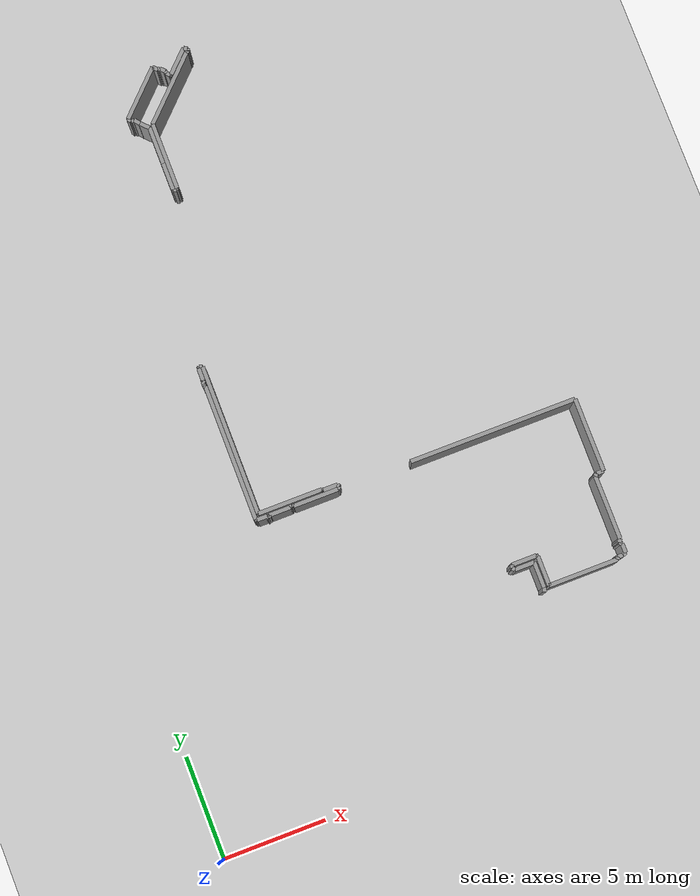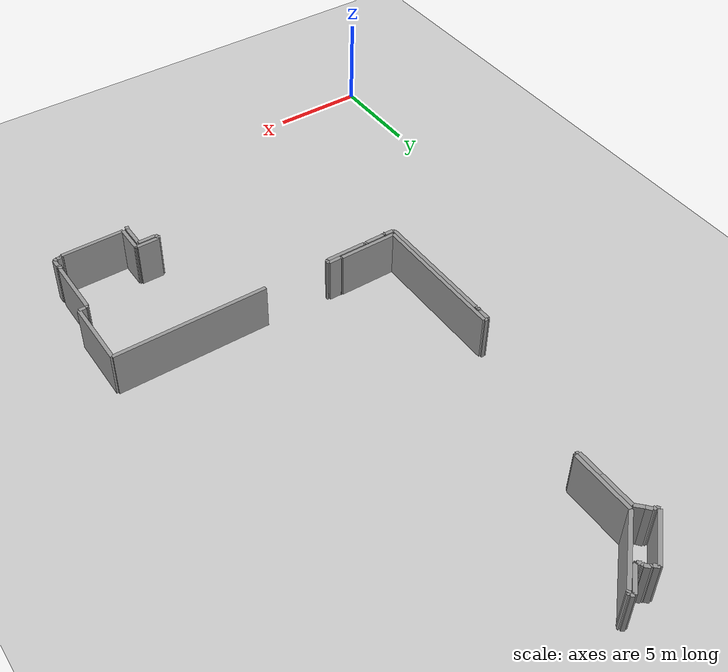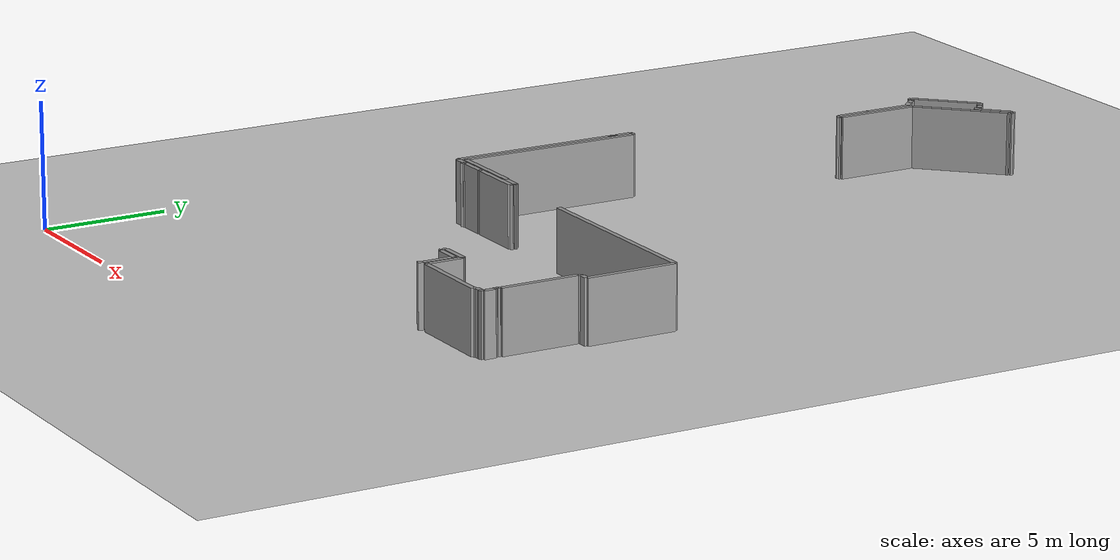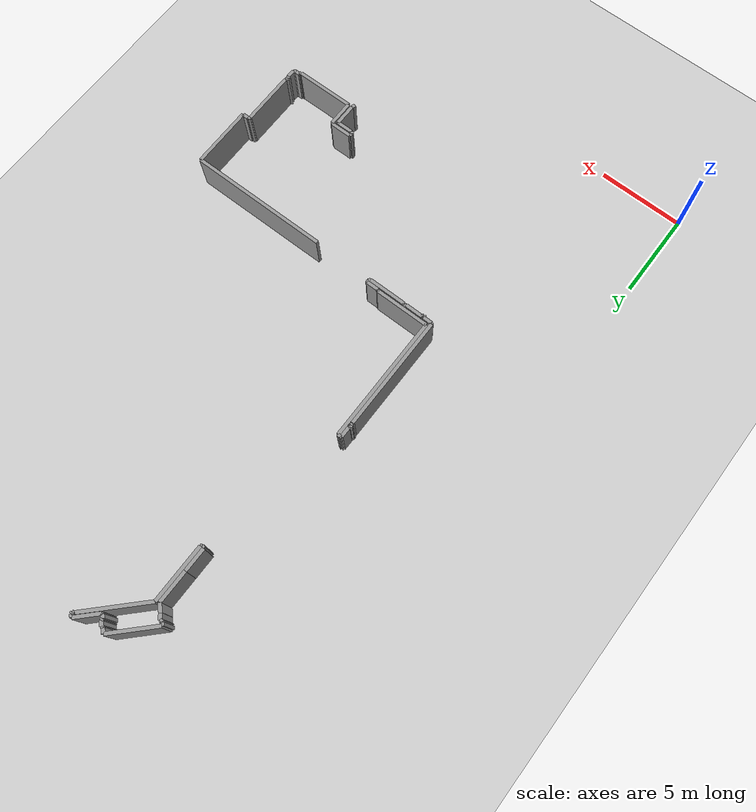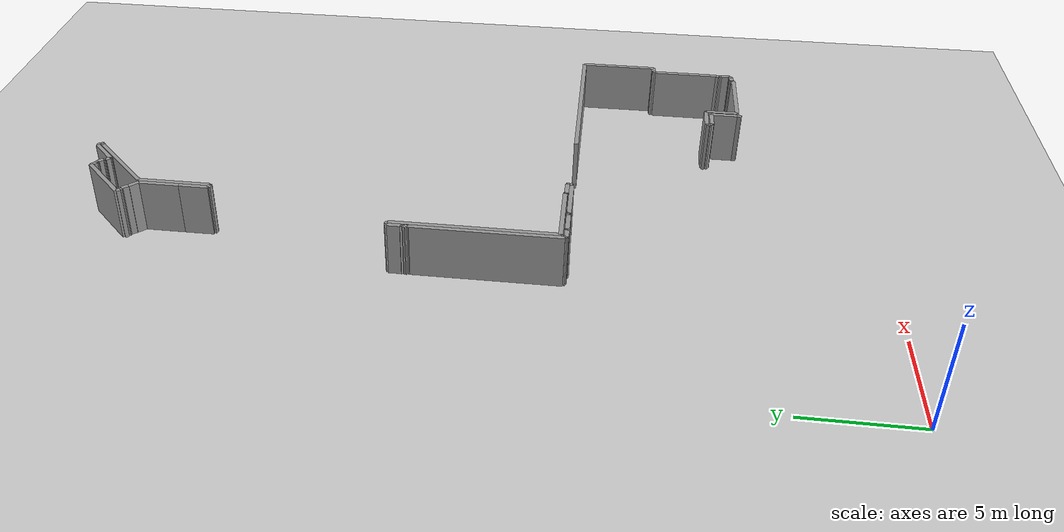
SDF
<sdf version="1.4">
 <world name="1_wall">
  <model name="ground_plane">
   <static>1</static>
   <link name="link">
    <collision name="collision">
     <geometry><plane><normal>0 0 1</normal><size>1000 1000</size></plane></geometry>
     <surface><friction><ode><mu>100</mu><mu2>50</mu2></ode></friction></surface>
    </collision>
    <visual name="visual">
     <cast_shadows>0</cast_shadows>
     <geometry><plane><normal>0 0 1</normal><size>10000 10000</size></plane></geometry>
     <material>
      <script><uri>file://media/materials/scripts/gazebo.material</uri><name>Gazebo/Grey</name></script>
     </material>
    </visual>
    <velocity_decay><linear>0</linear><angular>0</angular></velocity_decay>
   </link>
  </model>
  <model name="Wall_450">
   <static>1</static>
   <link name="Wall_450">
    <collision name="Wall_Collision_450">
     <geometry><box><size>8.2 0.2 2.5</size></box></geometry>
     <pose>0 0 1.25 0 -0 0</pose>
    </collision>
    <visual name="Wall_Visual_450">
     <pose>0 0 1.25 0 -0 0</pose>
     <geometry><box><size>8.2 0.2 2.5</size></box></geometry>
     <material>
      <script><uri>file://media/materials/scripts/gazebo.material</uri><name>Gazebo/Grey</name></script>
     </material>
    </visual>
    <velocity_decay><linear>0</linear><angular>0</angular></velocity_decay>
    <pose>18.7 14.0 0 0 0 0.0</pose>
   </link>
  </model>
  <model name="Wall_451">
   <static>1</static>
   <link name="Wall_451">
    <collision name="Wall_Collision_451">
     <geometry><box><size>3.6 0.2 2.5</size></box></geometry>
     <pose>0 0 1.25 0 -0 0</pose>
    </collision>
    <visual name="Wall_Visual_451">
     <pose>0 0 1.25 0 -0 0</pose>
     <geometry><box><size>3.6 0.2 2.5</size></box></geometry>
     <material>
      <script><uri>file://media/materials/scripts/gazebo.material</uri><name>Gazebo/Grey</name></script>
     </material>
    </visual>
    <velocity_decay><linear>0</linear><angular>0</angular></velocity_decay>
    <pose>22.8 12.2 0 0 0 -1.57079632679</pose>
   </link>
  </model>
  <model name="Wall_452">
   <static>1</static>
   <link name="Wall_452">
    <collision name="Wall_Collision_452">
     <geometry><box><size>0.35 0.2 2.5</size></box></geometry>
     <pose>0 0 1.25 0 -0 0</pose>
    </collision>
    <visual name="Wall_Visual_452">
     <pose>0 0 1.25 0 -0 0</pose>
     <geometry><box><size>0.35 0.2 2.5</size></box></geometry>
     <material>
      <script><uri>file://media/materials/scripts/gazebo.material</uri><name>Gazebo/Grey</name></script>
     </material>
    </visual>
    <velocity_decay><linear>0</linear><angular>0</angular></velocity_decay>
    <pose>22.625 10.4 0 0 0 3.14159265359</pose>
   </link>
  </model>
  <model name="Wall_453">
   <static>1</static>
   <link name="Wall_453">
    <collision name="Wall_Collision_453">
     <geometry><box><size>0.141421356237 0.2 2.5</size></box></geometry>
     <pose>0 0 1.25 0 -0 0</pose>
    </collision>
    <visual name="Wall_Visual_453">
     <pose>0 0 1.25 0 -0 0</pose>
     <geometry><box><size>0.141421356237 0.2 2.5</size></box></geometry>
     <material>
      <script><uri>file://media/materials/scripts/gazebo.material</uri><name>Gazebo/Grey</name></script>
     </material>
    </visual>
    <velocity_decay><linear>0</linear><angular>0</angular></velocity_decay>
    <pose>22.4 10.35 0 0 0 -2.35619449019</pose>
   </link>
  </model>
  <model name="Wall_454">
   <static>1</static>
   <link name="Wall_454">
    <collision name="Wall_Collision_454">
     <geometry><box><size>3.1 0.2 2.5</size></box></geometry>
     <pose>0 0 1.25 0 -0 0</pose>
    </collision>
    <visual name="Wall_Visual_454">
     <pose>0 0 1.25 0 -0 0</pose>
     <geometry><box><size>3.1 0.2 2.5</size></box></geometry>
     <material>
      <script><uri>file://media/materials/scripts/gazebo.material</uri><name>Gazebo/Grey</name></script>
     </material>
    </visual>
    <velocity_decay><linear>0</linear><angular>0</angular></velocity_decay>
    <pose>22.35 8.75 0 0 0 -1.57079632679</pose>
   </link>
  </model>
  <model name="Wall_455">
   <static>1</static>
   <link name="Wall_455">
    <collision name="Wall_Collision_455">
     <geometry><box><size>0.180277563773 0.2 2.5</size></box></geometry>
     <pose>0 0 1.25 0 -0 0</pose>
    </collision>
    <visual name="Wall_Visual_455">
     <pose>0 0 1.25 0 -0 0</pose>
     <geometry><box><size>0.180277563773 0.2 2.5</size></box></geometry>
     <material>
      <script><uri>file://media/materials/scripts/gazebo.material</uri><name>Gazebo/Grey</name></script>
     </material>
    </visual>
    <velocity_decay><linear>0</linear><angular>0</angular></velocity_decay>
    <pose>22.3 7.125 0 0 0 -2.15879893034</pose>
   </link>
  </model>
  <model name="Wall_456">
   <static>1</static>
   <link name="Wall_456">
    <collision name="Wall_Collision_456">
     <geometry><box><size>0.141421356237 0.2 2.5</size></box></geometry>
     <pose>0 0 1.25 0 -0 0</pose>
    </collision>
    <visual name="Wall_Visual_456">
     <pose>0 0 1.25 0 -0 0</pose>
     <geometry><box><size>0.141421356237 0.2 2.5</size></box></geometry>
     <material>
      <script><uri>file://media/materials/scripts/gazebo.material</uri><name>Gazebo/Grey</name></script>
     </material>
    </visual>
    <velocity_decay><linear>0</linear><angular>0</angular></velocity_decay>
    <pose>22.3 7.0 0 0 0 -0.785398163397</pose>
   </link>
  </model>
  <model name="Wall_457">
   <static>1</static>
   <link name="Wall_457">
    <collision name="Wall_Collision_457">
     <geometry><box><size>0.45 0.2 2.5</size></box></geometry>
     <pose>0 0 1.25 0 -0 0</pose>
    </collision>
    <visual name="Wall_Visual_457">
     <pose>0 0 1.25 0 -0 0</pose>
     <geometry><box><size>0.45 0.2 2.5</size></box></geometry>
     <material>
      <script><uri>file://media/materials/scripts/gazebo.material</uri><name>Gazebo/Grey</name></script>
     </material>
    </visual>
    <velocity_decay><linear>0</linear><angular>0</angular></velocity_decay>
    <pose>22.35 6.725 0 0 0 -1.57079632679</pose>
   </link>
  </model>
  <model name="Wall_458">
   <static>1</static>
   <link name="Wall_458">
    <collision name="Wall_Collision_458">
     <geometry><box><size>0.158113883008 0.2 2.5</size></box></geometry>
     <pose>0 0 1.25 0 -0 0</pose>
    </collision>
    <visual name="Wall_Visual_458">
     <pose>0 0 1.25 0 -0 0</pose>
     <geometry><box><size>0.158113883008 0.2 2.5</size></box></geometry>
     <material>
      <script><uri>file://media/materials/scripts/gazebo.material</uri><name>Gazebo/Grey</name></script>
     </material>
    </visual>
    <velocity_decay><linear>0</linear><angular>0</angular></velocity_decay>
    <pose>22.275 6.475 0 0 0 -2.81984209919</pose>
   </link>
  </model>
  <model name="Wall_459">
   <static>1</static>
   <link name="Wall_459">
    <collision name="Wall_Collision_459">
     <geometry><box><size>0.25 0.2 2.5</size></box></geometry>
     <pose>0 0 1.25 0 -0 0</pose>
    </collision>
    <visual name="Wall_Visual_459">
     <pose>0 0 1.25 0 -0 0</pose>
     <geometry><box><size>0.25 0.2 2.5</size></box></geometry>
     <material>
      <script><uri>file://media/materials/scripts/gazebo.material</uri><name>Gazebo/Grey</name></script>
     </material>
    </visual>
    <velocity_decay><linear>0</linear><angular>0</angular></velocity_decay>
    <pose>22.075 6.45 0 0 0 3.14159265359</pose>
   </link>
  </model>
  <model name="Wall_460">
   <static>1</static>
   <link name="Wall_460">
    <collision name="Wall_Collision_460">
     <geometry><box><size>0.111803398875 0.2 2.5</size></box></geometry>
     <pose>0 0 1.25 0 -0 0</pose>
    </collision>
    <visual name="Wall_Visual_460">
     <pose>0 0 1.25 0 -0 0</pose>
     <geometry><box><size>0.111803398875 0.2 2.5</size></box></geometry>
     <material>
      <script><uri>file://media/materials/scripts/gazebo.material</uri><name>Gazebo/Grey</name></script>
     </material>
    </visual>
    <velocity_decay><linear>0</linear><angular>0</angular></velocity_decay>
    <pose>21.925 6.4 0 0 0 -2.0344439358</pose>
   </link>
  </model>
  <model name="Wall_461">
   <static>1</static>
   <link name="Wall_461">
    <collision name="Wall_Collision_461">
     <geometry><box><size>3.4 0.2 2.5</size></box></geometry>
     <pose>0 0 1.25 0 -0 0</pose>
    </collision>
    <visual name="Wall_Visual_461">
     <pose>0 0 1.25 0 -0 0</pose>
     <geometry><box><size>3.4 0.2 2.5</size></box></geometry>
     <material>
      <script><uri>file://media/materials/scripts/gazebo.material</uri><name>Gazebo/Grey</name></script>
     </material>
    </visual>
    <velocity_decay><linear>0</linear><angular>0</angular></velocity_decay>
    <pose>20.2 6.35 0 0 0 3.14159265359</pose>
   </link>
  </model>
  <model name="Wall_462">
   <static>1</static>
   <link name="Wall_462">
    <collision name="Wall_Collision_462">
     <geometry><box><size>1.45 0.2 2.5</size></box></geometry>
     <pose>0 0 1.25 0 -0 0</pose>
    </collision>
    <visual name="Wall_Visual_462">
     <pose>0 0 1.25 0 -0 0</pose>
     <geometry><box><size>1.45 0.2 2.5</size></box></geometry>
     <material>
      <script><uri>file://media/materials/scripts/gazebo.material</uri><name>Gazebo/Grey</name></script>
     </material>
    </visual>
    <velocity_decay><linear>0</linear><angular>0</angular></velocity_decay>
    <pose>18.5 7.075 0 0 0 1.57079632679</pose>
   </link>
  </model>
  <model name="Wall_463">
   <static>1</static>
   <link name="Wall_463">
    <collision name="Wall_Collision_463">
     <geometry><box><size>0.0707106781187 0.2 2.5</size></box></geometry>
     <pose>0 0 1.25 0 -0 0</pose>
    </collision>
    <visual name="Wall_Visual_463">
     <pose>0 0 1.25 0 -0 0</pose>
     <geometry><box><size>0.0707106781187 0.2 2.5</size></box></geometry>
     <material>
      <script><uri>file://media/materials/scripts/gazebo.material</uri><name>Gazebo/Grey</name></script>
     </material>
    </visual>
    <velocity_decay><linear>0</linear><angular>0</angular></velocity_decay>
    <pose>18.475 7.825 0 0 0 2.35619449019</pose>
   </link>
  </model>
  <model name="Wall_464">
   <static>1</static>
   <link name="Wall_464">
    <collision name="Wall_Collision_464">
     <geometry><box><size>1.2 0.2 2.5</size></box></geometry>
     <pose>0 0 1.25 0 -0 0</pose>
    </collision>
    <visual name="Wall_Visual_464">
     <pose>0 0 1.25 0 -0 0</pose>
     <geometry><box><size>1.2 0.2 2.5</size></box></geometry>
     <material>
      <script><uri>file://media/materials/scripts/gazebo.material</uri><name>Gazebo/Grey</name></script>
     </material>
    </visual>
    <velocity_decay><linear>0</linear><angular>0</angular></velocity_decay>
    <pose>17.85 7.85 0 0 0 3.14159265359</pose>
   </link>
  </model>
  <model name="Wall_465">
   <static>1</static>
   <link name="Wall_465">
    <collision name="Wall_Collision_465">
     <geometry><box><size>0.158113883008 0.2 2.5</size></box></geometry>
     <pose>0 0 1.25 0 -0 0</pose>
    </collision>
    <visual name="Wall_Visual_465">
     <pose>0 0 1.25 0 -0 0</pose>
     <geometry><box><size>0.158113883008 0.2 2.5</size></box></geometry>
     <material>
      <script><uri>file://media/materials/scripts/gazebo.material</uri><name>Gazebo/Grey</name></script>
     </material>
    </visual>
    <velocity_decay><linear>0</linear><angular>0</angular></velocity_decay>
    <pose>17.225 7.775 0 0 0 -1.89254688119</pose>
   </link>
  </model>
  <model name="Wall_466">
   <static>1</static>
   <link name="Wall_466">
    <collision name="Wall_Collision_466">
     <geometry><box><size>0.141421356237 0.2 2.5</size></box></geometry>
     <pose>0 0 1.25 0 -0 0</pose>
    </collision>
    <visual name="Wall_Visual_466">
     <pose>0 0 1.25 0 -0 0</pose>
     <geometry><box><size>0.141421356237 0.2 2.5</size></box></geometry>
     <material>
      <script><uri>file://media/materials/scripts/gazebo.material</uri><name>Gazebo/Grey</name></script>
     </material>
    </visual>
    <velocity_decay><linear>0</linear><angular>0</angular></velocity_decay>
    <pose>17.25 7.65 0 0 0 -0.785398163397</pose>
   </link>
  </model>
  <model name="Wall_467">
   <static>1</static>
   <link name="Wall_467">
    <collision name="Wall_Collision_467">
     <geometry><box><size>0.95 0.2 2.5</size></box></geometry>
     <pose>0 0 1.25 0 -0 0</pose>
    </collision>
    <visual name="Wall_Visual_467">
     <pose>0 0 1.25 0 -0 0</pose>
     <geometry><box><size>0.95 0.2 2.5</size></box></geometry>
     <material>
      <script><uri>file://media/materials/scripts/gazebo.material</uri><name>Gazebo/Grey</name></script>
     </material>
    </visual>
    <velocity_decay><linear>0</linear><angular>0</angular></velocity_decay>
    <pose>17.775 7.6 0 0 0 0.0</pose>
   </link>
  </model>
  <model name="Wall_468">
   <static>1</static>
   <link name="Wall_468">
    <collision name="Wall_Collision_468">
     <geometry><box><size>1.25 0.2 2.5</size></box></geometry>
     <pose>0 0 1.25 0 -0 0</pose>
    </collision>
    <visual name="Wall_Visual_468">
     <pose>0 0 1.25 0 -0 0</pose>
     <geometry><box><size>1.25 0.2 2.5</size></box></geometry>
     <material>
      <script><uri>file://media/materials/scripts/gazebo.material</uri><name>Gazebo/Grey</name></script>
     </material>
    </visual>
    <velocity_decay><linear>0</linear><angular>0</angular></velocity_decay>
    <pose>18.25 6.975 0 0 0 -1.57079632679</pose>
   </link>
  </model>
  <model name="Wall_469">
   <static>1</static>
   <link name="Wall_469">
    <collision name="Wall_Collision_469">
     <geometry><box><size>0.206155281281 0.2 2.5</size></box></geometry>
     <pose>0 0 1.25 0 -0 0</pose>
    </collision>
    <visual name="Wall_Visual_469">
     <pose>0 0 1.25 0 -0 0</pose>
     <geometry><box><size>0.206155281281 0.2 2.5</size></box></geometry>
     <material>
      <script><uri>file://media/materials/scripts/gazebo.material</uri><name>Gazebo/Grey</name></script>
     </material>
    </visual>
    <velocity_decay><linear>0</linear><angular>0</angular></velocity_decay>
    <pose>18.225 6.25 0 0 0 -1.81577498992</pose>
   </link>
  </model>
  <model name="Wall_470">
   <static>1</static>
   <link name="Wall_470">
    <collision name="Wall_Collision_470">
     <geometry><box><size>1.35 0.2 2.5</size></box></geometry>
     <pose>0 0 1.25 0 -0 0</pose>
    </collision>
    <visual name="Wall_Visual_470">
     <pose>0 0 1.25 0 -0 0</pose>
     <geometry><box><size>1.35 0.2 2.5</size></box></geometry>
     <material>
      <script><uri>file://media/materials/scripts/gazebo.material</uri><name>Gazebo/Grey</name></script>
     </material>
    </visual>
    <velocity_decay><linear>0</linear><angular>0</angular></velocity_decay>
    <pose>8.8 30.675 0 0 0 -1.57079632679</pose>
   </link>
  </model>
  <model name="Wall_471">
   <static>1</static>
   <link name="Wall_471">
    <collision name="Wall_Collision_471">
     <geometry><box><size>0.158113883008 0.2 2.5</size></box></geometry>
     <pose>0 0 1.25 0 -0 0</pose>
    </collision>
    <visual name="Wall_Visual_471">
     <pose>0 0 1.25 0 -0 0</pose>
     <geometry><box><size>0.158113883008 0.2 2.5</size></box></geometry>
     <material>
      <script><uri>file://media/materials/scripts/gazebo.material</uri><name>Gazebo/Grey</name></script>
     </material>
    </visual>
    <velocity_decay><linear>0</linear><angular>0</angular></velocity_decay>
    <pose>8.875 29.975 0 0 0 -0.321750554397</pose>
   </link>
  </model>
  <model name="Wall_472">
   <static>1</static>
   <link name="Wall_472">
    <collision name="Wall_Collision_472">
     <geometry><box><size>0.0707106781187 0.2 2.5</size></box></geometry>
     <pose>0 0 1.25 0 -0 0</pose>
    </collision>
    <visual name="Wall_Visual_472">
     <pose>0 0 1.25 0 -0 0</pose>
     <geometry><box><size>0.0707106781187 0.2 2.5</size></box></geometry>
     <material>
      <script><uri>file://media/materials/scripts/gazebo.material</uri><name>Gazebo/Grey</name></script>
     </material>
    </visual>
    <velocity_decay><linear>0</linear><angular>0</angular></velocity_decay>
    <pose>8.975 29.975 0 0 0 0.785398163397</pose>
   </link>
  </model>
  <model name="Wall_473">
   <static>1</static>
   <link name="Wall_473">
    <collision name="Wall_Collision_473">
     <geometry><box><size>3.3 0.2 2.5</size></box></geometry>
     <pose>0 0 1.25 0 -0 0</pose>
    </collision>
    <visual name="Wall_Visual_473">
     <pose>0 0 1.25 0 -0 0</pose>
     <geometry><box><size>3.3 0.2 2.5</size></box></geometry>
     <material>
      <script><uri>file://media/materials/scripts/gazebo.material</uri><name>Gazebo/Grey</name></script>
     </material>
    </visual>
    <velocity_decay><linear>0</linear><angular>0</angular></velocity_decay>
    <pose>9.0 31.65 0 0 0 1.57079632679</pose>
   </link>
  </model>
  <model name="Wall_474">
   <static>1</static>
   <link name="Wall_474">
    <collision name="Wall_Collision_474">
     <geometry><box><size>3.81837661841 0.2 2.5</size></box></geometry>
     <pose>0 0 1.25 0 -0 0</pose>
    </collision>
    <visual name="Wall_Visual_474">
     <pose>0 0 1.25 0 -0 0</pose>
     <geometry><box><size>3.81837661841 0.2 2.5</size></box></geometry>
     <material>
      <script><uri>file://media/materials/scripts/gazebo.material</uri><name>Gazebo/Grey</name></script>
     </material>
    </visual>
    <velocity_decay><linear>0</linear><angular>0</angular></velocity_decay>
    <pose>10.35 34.65 0 0 0 0.785398163397</pose>
   </link>
  </model>
  <model name="Wall_475">
   <static>1</static>
   <link name="Wall_475">
    <collision name="Wall_Collision_475">
     <geometry><box><size>0.111803398875 0.2 2.5</size></box></geometry>
     <pose>0 0 1.25 0 -0 0</pose>
    </collision>
    <visual name="Wall_Visual_475">
     <pose>0 0 1.25 0 -0 0</pose>
     <geometry><box><size>0.111803398875 0.2 2.5</size></box></geometry>
     <material>
      <script><uri>file://media/materials/scripts/gazebo.material</uri><name>Gazebo/Grey</name></script>
     </material>
    </visual>
    <velocity_decay><linear>0</linear><angular>0</angular></velocity_decay>
    <pose>11.75 36.025 0 0 0 0.463647609001</pose>
   </link>
  </model>
  <model name="Wall_476">
   <static>1</static>
   <link name="Wall_476">
    <collision name="Wall_Collision_476">
     <geometry><box><size>0.1 0.2 2.5</size></box></geometry>
     <pose>0 0 1.25 0 -0 0</pose>
    </collision>
    <visual name="Wall_Visual_476">
     <pose>0 0 1.25 0 -0 0</pose>
     <geometry><box><size>0.1 0.2 2.5</size></box></geometry>
     <material>
      <script><uri>file://media/materials/scripts/gazebo.material</uri><name>Gazebo/Grey</name></script>
     </material>
    </visual>
    <velocity_decay><linear>0</linear><angular>0</angular></velocity_decay>
    <pose>11.8 36.1 0 0 0 1.57079632679</pose>
   </link>
  </model>
  <model name="Wall_477">
   <static>1</static>
   <link name="Wall_477">
    <collision name="Wall_Collision_477">
     <geometry><box><size>0.180277563773 0.2 2.5</size></box></geometry>
     <pose>0 0 1.25 0 -0 0</pose>
    </collision>
    <visual name="Wall_Visual_477">
     <pose>0 0 1.25 0 -0 0</pose>
     <geometry><box><size>0.180277563773 0.2 2.5</size></box></geometry>
     <material>
      <script><uri>file://media/materials/scripts/gazebo.material</uri><name>Gazebo/Grey</name></script>
     </material>
    </visual>
    <velocity_decay><linear>0</linear><angular>0</angular></velocity_decay>
    <pose>11.725 36.2 0 0 0 2.55359005004</pose>
   </link>
  </model>
  <model name="Wall_478">
   <static>1</static>
   <link name="Wall_478">
    <collision name="Wall_Collision_478">
     <geometry><box><size>1.41421356237 0.2 2.5</size></box></geometry>
     <pose>0 0 1.25 0 -0 0</pose>
    </collision>
    <visual name="Wall_Visual_478">
     <pose>0 0 1.25 0 -0 0</pose>
     <geometry><box><size>1.41421356237 0.2 2.5</size></box></geometry>
     <material>
      <script><uri>file://media/materials/scripts/gazebo.material</uri><name>Gazebo/Grey</name></script>
     </material>
    </visual>
    <velocity_decay><linear>0</linear><angular>0</angular></velocity_decay>
    <pose>11.15 35.75 0 0 0 -2.35619449019</pose>
   </link>
  </model>
  <model name="Wall_479">
   <static>1</static>
   <link name="Wall_479">
    <collision name="Wall_Collision_479">
     <geometry><box><size>0.05 0.2 2.5</size></box></geometry>
     <pose>0 0 1.25 0 -0 0</pose>
    </collision>
    <visual name="Wall_Visual_479">
     <pose>0 0 1.25 0 -0 0</pose>
     <geometry><box><size>0.05 0.2 2.5</size></box></geometry>
     <material>
      <script><uri>file://media/materials/scripts/gazebo.material</uri><name>Gazebo/Grey</name></script>
     </material>
    </visual>
    <velocity_decay><linear>0</linear><angular>0</angular></velocity_decay>
    <pose>10.625 35.25 0 0 0 3.14159265359</pose>
   </link>
  </model>
  <model name="Wall_480">
   <static>1</static>
   <link name="Wall_480">
    <collision name="Wall_Collision_480">
     <geometry><box><size>0.212132034356 0.2 2.5</size></box></geometry>
     <pose>0 0 1.25 0 -0 0</pose>
    </collision>
    <visual name="Wall_Visual_480">
     <pose>0 0 1.25 0 -0 0</pose>
     <geometry><box><size>0.212132034356 0.2 2.5</size></box></geometry>
     <material>
      <script><uri>file://media/materials/scripts/gazebo.material</uri><name>Gazebo/Grey</name></script>
     </material>
    </visual>
    <velocity_decay><linear>0</linear><angular>0</angular></velocity_decay>
    <pose>10.525 35.325 0 0 0 2.35619449019</pose>
   </link>
  </model>
  <model name="Wall_481">
   <static>1</static>
   <link name="Wall_481">
    <collision name="Wall_Collision_481">
     <geometry><box><size>0.1 0.2 2.5</size></box></geometry>
     <pose>0 0 1.25 0 -0 0</pose>
    </collision>
    <visual name="Wall_Visual_481">
     <pose>0 0 1.25 0 -0 0</pose>
     <geometry><box><size>0.1 0.2 2.5</size></box></geometry>
     <material>
      <script><uri>file://media/materials/scripts/gazebo.material</uri><name>Gazebo/Grey</name></script>
     </material>
    </visual>
    <velocity_decay><linear>0</linear><angular>0</angular></velocity_decay>
    <pose>10.45 35.45 0 0 0 1.57079632679</pose>
   </link>
  </model>
  <model name="Wall_482">
   <static>1</static>
   <link name="Wall_482">
    <collision name="Wall_Collision_482">
     <geometry><box><size>0.282842712475 0.2 2.5</size></box></geometry>
     <pose>0 0 1.25 0 -0 0</pose>
    </collision>
    <visual name="Wall_Visual_482">
     <pose>0 0 1.25 0 -0 0</pose>
     <geometry><box><size>0.282842712475 0.2 2.5</size></box></geometry>
     <material>
      <script><uri>file://media/materials/scripts/gazebo.material</uri><name>Gazebo/Grey</name></script>
     </material>
    </visual>
    <velocity_decay><linear>0</linear><angular>0</angular></velocity_decay>
    <pose>10.35 35.6 0 0 0 2.35619449019</pose>
   </link>
  </model>
  <model name="Wall_483">
   <static>1</static>
   <link name="Wall_483">
    <collision name="Wall_Collision_483">
     <geometry><box><size>0.1 0.2 2.5</size></box></geometry>
     <pose>0 0 1.25 0 -0 0</pose>
    </collision>
    <visual name="Wall_Visual_483">
     <pose>0 0 1.25 0 -0 0</pose>
     <geometry><box><size>0.1 0.2 2.5</size></box></geometry>
     <material>
      <script><uri>file://media/materials/scripts/gazebo.material</uri><name>Gazebo/Grey</name></script>
     </material>
    </visual>
    <velocity_decay><linear>0</linear><angular>0</angular></velocity_decay>
    <pose>10.2 35.7 0 0 0 3.14159265359</pose>
   </link>
  </model>
  <model name="Wall_484">
   <static>1</static>
   <link name="Wall_484">
    <collision name="Wall_Collision_484">
     <geometry><box><size>0.282842712475 0.2 2.5</size></box></geometry>
     <pose>0 0 1.25 0 -0 0</pose>
    </collision>
    <visual name="Wall_Visual_484">
     <pose>0 0 1.25 0 -0 0</pose>
     <geometry><box><size>0.282842712475 0.2 2.5</size></box></geometry>
     <material>
      <script><uri>file://media/materials/scripts/gazebo.material</uri><name>Gazebo/Grey</name></script>
     </material>
    </visual>
    <velocity_decay><linear>0</linear><angular>0</angular></velocity_decay>
    <pose>10.05 35.8 0 0 0 2.35619449019</pose>
   </link>
  </model>
  <model name="Wall_485">
   <static>1</static>
   <link name="Wall_485">
    <collision name="Wall_Collision_485">
     <geometry><box><size>2.75771644663 0.2 2.5</size></box></geometry>
     <pose>0 0 1.25 0 -0 0</pose>
    </collision>
    <visual name="Wall_Visual_485">
     <pose>0 0 1.25 0 -0 0</pose>
     <geometry><box><size>2.75771644663 0.2 2.5</size></box></geometry>
     <material>
      <script><uri>file://media/materials/scripts/gazebo.material</uri><name>Gazebo/Grey</name></script>
     </material>
    </visual>
    <velocity_decay><linear>0</linear><angular>0</angular></velocity_decay>
    <pose>8.975 34.925 0 0 0 -2.35619449019</pose>
   </link>
  </model>
  <model name="Wall_486">
   <static>1</static>
   <link name="Wall_486">
    <collision name="Wall_Collision_486">
     <geometry><box><size>0.180277563773 0.2 2.5</size></box></geometry>
     <pose>0 0 1.25 0 -0 0</pose>
    </collision>
    <visual name="Wall_Visual_486">
     <pose>0 0 1.25 0 -0 0</pose>
     <geometry><box><size>0.180277563773 0.2 2.5</size></box></geometry>
     <material>
      <script><uri>file://media/materials/scripts/gazebo.material</uri><name>Gazebo/Grey</name></script>
     </material>
    </visual>
    <velocity_decay><linear>0</linear><angular>0</angular></velocity_decay>
    <pose>8.05 33.875 0 0 0 -0.982793723247</pose>
   </link>
  </model>
  <model name="Wall_487">
   <static>1</static>
   <link name="Wall_487">
    <collision name="Wall_Collision_487">
     <geometry><box><size>0.15 0.2 2.5</size></box></geometry>
     <pose>0 0 1.25 0 -0 0</pose>
    </collision>
    <visual name="Wall_Visual_487">
     <pose>0 0 1.25 0 -0 0</pose>
     <geometry><box><size>0.15 0.2 2.5</size></box></geometry>
     <material>
      <script><uri>file://media/materials/scripts/gazebo.material</uri><name>Gazebo/Grey</name></script>
     </material>
    </visual>
    <velocity_decay><linear>0</linear><angular>0</angular></velocity_decay>
    <pose>8.175 33.8 0 0 0 0.0</pose>
   </link>
  </model>
  <model name="Wall_488">
   <static>1</static>
   <link name="Wall_488">
    <collision name="Wall_Collision_488">
     <geometry><box><size>0.320156211872 0.2 2.5</size></box></geometry>
     <pose>0 0 1.25 0 -0 0</pose>
    </collision>
    <visual name="Wall_Visual_488">
     <pose>0 0 1.25 0 -0 0</pose>
     <geometry><box><size>0.320156211872 0.2 2.5</size></box></geometry>
     <material>
      <script><uri>file://media/materials/scripts/gazebo.material</uri><name>Gazebo/Grey</name></script>
     </material>
    </visual>
    <velocity_decay><linear>0</linear><angular>0</angular></velocity_decay>
    <pose>8.35 33.675 0 0 0 -0.896055384571</pose>
   </link>
  </model>
  <model name="Wall_489">
   <static>1</static>
   <link name="Wall_489">
    <collision name="Wall_Collision_489">
     <geometry><box><size>0.494974746831 0.2 2.5</size></box></geometry>
     <pose>0 0 1.25 0 -0 0</pose>
    </collision>
    <visual name="Wall_Visual_489">
     <pose>0 0 1.25 0 -0 0</pose>
     <geometry><box><size>0.494974746831 0.2 2.5</size></box></geometry>
     <material>
      <script><uri>file://media/materials/scripts/gazebo.material</uri><name>Gazebo/Grey</name></script>
     </material>
    </visual>
    <velocity_decay><linear>0</linear><angular>0</angular></velocity_decay>
    <pose>8.625 33.375 0 0 0 -0.785398163397</pose>
   </link>
  </model>
  <model name="Wall_490">
   <static>1</static>
   <link name="Wall_490">
    <collision name="Wall_Collision_490">
     <geometry><box><size>1.85 0.2 2.5</size></box></geometry>
     <pose>0 0 1.25 0 -0 0</pose>
    </collision>
    <visual name="Wall_Visual_490">
     <pose>0 0 1.25 0 -0 0</pose>
     <geometry><box><size>1.85 0.2 2.5</size></box></geometry>
     <material>
      <script><uri>file://media/materials/scripts/gazebo.material</uri><name>Gazebo/Grey</name></script>
     </material>
    </visual>
    <velocity_decay><linear>0</linear><angular>0</angular></velocity_decay>
    <pose>8.8 32.275 0 0 0 -1.57079632679</pose>
   </link>
  </model>
  <model name="Wall_491">
   <static>1</static>
   <link name="Wall_491">
    <collision name="Wall_Collision_491">
     <geometry><box><size>0.05 0.2 2.5</size></box></geometry>
     <pose>0 0 1.25 0 -0 0</pose>
    </collision>
    <visual name="Wall_Visual_491">
     <pose>0 0 1.25 0 -0 0</pose>
     <geometry><box><size>0.05 0.2 2.5</size></box></geometry>
     <material>
      <script><uri>file://media/materials/scripts/gazebo.material</uri><name>Gazebo/Grey</name></script>
     </material>
    </visual>
    <velocity_decay><linear>0</linear><angular>0</angular></velocity_decay>
    <pose>7.5 13.975 0 0 0 -1.57079632679</pose>
   </link>
  </model>
  <model name="Wall_492">
   <static>1</static>
   <link name="Wall_492">
    <collision name="Wall_Collision_492">
     <geometry><box><size>0.0707106781187 0.2 2.5</size></box></geometry>
     <pose>0 0 1.25 0 -0 0</pose>
    </collision>
    <visual name="Wall_Visual_492">
     <pose>0 0 1.25 0 -0 0</pose>
     <geometry><box><size>0.0707106781187 0.2 2.5</size></box></geometry>
     <material>
      <script><uri>file://media/materials/scripts/gazebo.material</uri><name>Gazebo/Grey</name></script>
     </material>
    </visual>
    <velocity_decay><linear>0</linear><angular>0</angular></velocity_decay>
    <pose>7.525 13.925 0 0 0 -0.785398163397</pose>
   </link>
  </model>
  <model name="Wall_493">
   <static>1</static>
   <link name="Wall_493">
    <collision name="Wall_Collision_493">
     <geometry><box><size>0.111803398875 0.2 2.5</size></box></geometry>
     <pose>0 0 1.25 0 -0 0</pose>
    </collision>
    <visual name="Wall_Visual_493">
     <pose>0 0 1.25 0 -0 0</pose>
     <geometry><box><size>0.111803398875 0.2 2.5</size></box></geometry>
     <material>
      <script><uri>file://media/materials/scripts/gazebo.material</uri><name>Gazebo/Grey</name></script>
     </material>
    </visual>
    <velocity_decay><linear>0</linear><angular>0</angular></velocity_decay>
    <pose>7.575 13.95 0 0 0 1.10714871779</pose>
   </link>
  </model>
  <model name="Wall_494">
   <static>1</static>
   <link name="Wall_494">
    <collision name="Wall_Collision_494">
     <geometry><box><size>1.05 0.2 2.5</size></box></geometry>
     <pose>0 0 1.25 0 -0 0</pose>
    </collision>
    <visual name="Wall_Visual_494">
     <pose>0 0 1.25 0 -0 0</pose>
     <geometry><box><size>1.05 0.2 2.5</size></box></geometry>
     <material>
      <script><uri>file://media/materials/scripts/gazebo.material</uri><name>Gazebo/Grey</name></script>
     </material>
    </visual>
    <velocity_decay><linear>0</linear><angular>0</angular></velocity_decay>
    <pose>8.125 14.0 0 0 0 0.0</pose>
   </link>
  </model>
  <model name="Wall_495">
   <static>1</static>
   <link name="Wall_495">
    <collision name="Wall_Collision_495">
     <geometry><box><size>0.111803398875 0.2 2.5</size></box></geometry>
     <pose>0 0 1.25 0 -0 0</pose>
    </collision>
    <visual name="Wall_Visual_495">
     <pose>0 0 1.25 0 -0 0</pose>
     <geometry><box><size>0.111803398875 0.2 2.5</size></box></geometry>
     <material>
      <script><uri>file://media/materials/scripts/gazebo.material</uri><name>Gazebo/Grey</name></script>
     </material>
    </visual>
    <velocity_decay><linear>0</linear><angular>0</angular></velocity_decay>
    <pose>8.7 14.025 0 0 0 0.463647609001</pose>
   </link>
  </model>
  <model name="Wall_496">
   <static>1</static>
   <link name="Wall_496">
    <collision name="Wall_Collision_496">
     <geometry><box><size>0.0707106781187 0.2 2.5</size></box></geometry>
     <pose>0 0 1.25 0 -0 0</pose>
    </collision>
    <visual name="Wall_Visual_496">
     <pose>0 0 1.25 0 -0 0</pose>
     <geometry><box><size>0.0707106781187 0.2 2.5</size></box></geometry>
     <material>
      <script><uri>file://media/materials/scripts/gazebo.material</uri><name>Gazebo/Grey</name></script>
     </material>
    </visual>
    <velocity_decay><linear>0</linear><angular>0</angular></velocity_decay>
    <pose>8.775 14.025 0 0 0 -0.785398163397</pose>
   </link>
  </model>
  <model name="Wall_497">
   <static>1</static>
   <link name="Wall_497">
    <collision name="Wall_Collision_497">
     <geometry><box><size>2.2 0.2 2.5</size></box></geometry>
     <pose>0 0 1.25 0 -0 0</pose>
    </collision>
    <visual name="Wall_Visual_497">
     <pose>0 0 1.25 0 -0 0</pose>
     <geometry><box><size>2.2 0.2 2.5</size></box></geometry>
     <material>
      <script><uri>file://media/materials/scripts/gazebo.material</uri><name>Gazebo/Grey</name></script>
     </material>
    </visual>
    <velocity_decay><linear>0</linear><angular>0</angular></velocity_decay>
    <pose>9.9 14.0 0 0 0 0.0</pose>
   </link>
  </model>
  <model name="Wall_498">
   <static>1</static>
   <link name="Wall_498">
    <collision name="Wall_Collision_498">
     <geometry><box><size>0.141421356237 0.2 2.5</size></box></geometry>
     <pose>0 0 1.25 0 -0 0</pose>
    </collision>
    <visual name="Wall_Visual_498">
     <pose>0 0 1.25 0 -0 0</pose>
     <geometry><box><size>0.141421356237 0.2 2.5</size></box></geometry>
     <material>
      <script><uri>file://media/materials/scripts/gazebo.material</uri><name>Gazebo/Grey</name></script>
     </material>
    </visual>
    <velocity_decay><linear>0</linear><angular>0</angular></velocity_decay>
    <pose>11.05 14.05 0 0 0 0.785398163397</pose>
   </link>
  </model>
  <model name="Wall_499">
   <static>1</static>
   <link name="Wall_499">
    <collision name="Wall_Collision_499">
     <geometry><box><size>0.111803398875 0.2 2.5</size></box></geometry>
     <pose>0 0 1.25 0 -0 0</pose>
    </collision>
    <visual name="Wall_Visual_499">
     <pose>0 0 1.25 0 -0 0</pose>
     <geometry><box><size>0.111803398875 0.2 2.5</size></box></geometry>
     <material>
      <script><uri>file://media/materials/scripts/gazebo.material</uri><name>Gazebo/Grey</name></script>
     </material>
    </visual>
    <velocity_decay><linear>0</linear><angular>0</angular></velocity_decay>
    <pose>11.075 14.15 0 0 0 2.0344439358</pose>
   </link>
  </model>
  <model name="Wall_500">
   <static>1</static>
   <link name="Wall_500">
    <collision name="Wall_Collision_500">
     <geometry><box><size>0.7 0.2 2.5</size></box></geometry>
     <pose>0 0 1.25 0 -0 0</pose>
    </collision>
    <visual name="Wall_Visual_500">
     <pose>0 0 1.25 0 -0 0</pose>
     <geometry><box><size>0.7 0.2 2.5</size></box></geometry>
     <material>
      <script><uri>file://media/materials/scripts/gazebo.material</uri><name>Gazebo/Grey</name></script>
     </material>
    </visual>
    <velocity_decay><linear>0</linear><angular>0</angular></velocity_decay>
    <pose>10.7 14.2 0 0 0 3.14159265359</pose>
   </link>
  </model>
  <model name="Wall_501">
   <static>1</static>
   <link name="Wall_501">
    <collision name="Wall_Collision_501">
     <geometry><box><size>0.0707106781187 0.2 2.5</size></box></geometry>
     <pose>0 0 1.25 0 -0 0</pose>
    </collision>
    <visual name="Wall_Visual_501">
     <pose>0 0 1.25 0 -0 0</pose>
     <geometry><box><size>0.0707106781187 0.2 2.5</size></box></geometry>
     <material>
      <script><uri>file://media/materials/scripts/gazebo.material</uri><name>Gazebo/Grey</name></script>
     </material>
    </visual>
    <velocity_decay><linear>0</linear><angular>0</angular></velocity_decay>
    <pose>10.325 14.225 0 0 0 2.35619449019</pose>
   </link>
  </model>
  <model name="Wall_502">
   <static>1</static>
   <link name="Wall_502">
    <collision name="Wall_Collision_502">
     <geometry><box><size>3.15 0.2 2.5</size></box></geometry>
     <pose>0 0 1.25 0 -0 0</pose>
    </collision>
    <visual name="Wall_Visual_502">
     <pose>0 0 1.25 0 -0 0</pose>
     <geometry><box><size>3.15 0.2 2.5</size></box></geometry>
     <material>
      <script><uri>file://media/materials/scripts/gazebo.material</uri><name>Gazebo/Grey</name></script>
     </material>
    </visual>
    <velocity_decay><linear>0</linear><angular>0</angular></velocity_decay>
    <pose>8.725 14.25 0 0 0 3.14159265359</pose>
   </link>
  </model>
  <model name="Wall_503">
   <static>1</static>
   <link name="Wall_503">
    <collision name="Wall_Collision_503">
     <geometry><box><size>7.35 0.2 2.5</size></box></geometry>
     <pose>0 0 1.25 0 -0 0</pose>
    </collision>
    <visual name="Wall_Visual_503">
     <pose>0 0 1.25 0 -0 0</pose>
     <geometry><box><size>7.35 0.2 2.5</size></box></geometry>
     <material>
      <script><uri>file://media/materials/scripts/gazebo.material</uri><name>Gazebo/Grey</name></script>
     </material>
    </visual>
    <velocity_decay><linear>0</linear><angular>0</angular></velocity_decay>
    <pose>7.15 17.925 0 0 0 1.57079632679</pose>
   </link>
  </model>
  <model name="Wall_504">
   <static>1</static>
   <link name="Wall_504">
    <collision name="Wall_Collision_504">
     <geometry><box><size>0.158113883008 0.2 2.5</size></box></geometry>
     <pose>0 0 1.25 0 -0 0</pose>
    </collision>
    <visual name="Wall_Visual_504">
     <pose>0 0 1.25 0 -0 0</pose>
     <geometry><box><size>0.158113883008 0.2 2.5</size></box></geometry>
     <material>
      <script><uri>file://media/materials/scripts/gazebo.material</uri><name>Gazebo/Grey</name></script>
     </material>
    </visual>
    <velocity_decay><linear>0</linear><angular>0</angular></velocity_decay>
    <pose>7.075 21.625 0 0 0 2.81984209919</pose>
   </link>
  </model>
  <model name="Wall_505">
   <static>1</static>
   <link name="Wall_505">
    <collision name="Wall_Collision_505">
     <geometry><box><size>0.0707106781187 0.2 2.5</size></box></geometry>
     <pose>0 0 1.25 0 -0 0</pose>
    </collision>
    <visual name="Wall_Visual_505">
     <pose>0 0 1.25 0 -0 0</pose>
     <geometry><box><size>0.0707106781187 0.2 2.5</size></box></geometry>
     <material>
      <script><uri>file://media/materials/scripts/gazebo.material</uri><name>Gazebo/Grey</name></script>
     </material>
    </visual>
    <velocity_decay><linear>0</linear><angular>0</angular></velocity_decay>
    <pose>6.975 21.625 0 0 0 -2.35619449019</pose>
   </link>
  </model>
  <model name="Wall_506">
   <static>1</static>
   <link name="Wall_506">
    <collision name="Wall_Collision_506">
     <geometry><box><size>0.6 0.2 2.5</size></box></geometry>
     <pose>0 0 1.25 0 -0 0</pose>
    </collision>
    <visual name="Wall_Visual_506">
     <pose>0 0 1.25 0 -0 0</pose>
     <geometry><box><size>0.6 0.2 2.5</size></box></geometry>
     <material>
      <script><uri>file://media/materials/scripts/gazebo.material</uri><name>Gazebo/Grey</name></script>
     </material>
    </visual>
    <velocity_decay><linear>0</linear><angular>0</angular></velocity_decay>
    <pose>6.95 21.3 0 0 0 -1.57079632679</pose>
   </link>
  </model>
  <model name="Wall_507">
   <static>1</static>
   <link name="Wall_507">
    <collision name="Wall_Collision_507">
     <geometry><box><size>0.0707106781187 0.2 2.5</size></box></geometry>
     <pose>0 0 1.25 0 -0 0</pose>
    </collision>
    <visual name="Wall_Visual_507">
     <pose>0 0 1.25 0 -0 0</pose>
     <geometry><box><size>0.0707106781187 0.2 2.5</size></box></geometry>
     <material>
      <script><uri>file://media/materials/scripts/gazebo.material</uri><name>Gazebo/Grey</name></script>
     </material>
    </visual>
    <velocity_decay><linear>0</linear><angular>0</angular></velocity_decay>
    <pose>6.925 20.975 0 0 0 -2.35619449019</pose>
   </link>
  </model>
  <model name="Wall_508">
   <static>1</static>
   <link name="Wall_508">
    <collision name="Wall_Collision_508">
     <geometry><box><size>0.111803398875 0.2 2.5</size></box></geometry>
     <pose>0 0 1.25 0 -0 0</pose>
    </collision>
    <visual name="Wall_Visual_508">
     <pose>0 0 1.25 0 -0 0</pose>
     <geometry><box><size>0.111803398875 0.2 2.5</size></box></geometry>
     <material>
      <script><uri>file://media/materials/scripts/gazebo.material</uri><name>Gazebo/Grey</name></script>
     </material>
    </visual>
    <velocity_decay><linear>0</linear><angular>0</angular></velocity_decay>
    <pose>6.925 20.9 0 0 0 -1.10714871779</pose>
   </link>
  </model>
  <model name="Wall_509">
   <static>1</static>
   <link name="Wall_509">
    <collision name="Wall_Collision_509">
     <geometry><box><size>0.111803398875 0.2 2.5</size></box></geometry>
     <pose>0 0 1.25 0 -0 0</pose>
    </collision>
    <visual name="Wall_Visual_509">
     <pose>0 0 1.25 0 -0 0</pose>
     <geometry><box><size>0.111803398875 0.2 2.5</size></box></geometry>
     <material>
      <script><uri>file://media/materials/scripts/gazebo.material</uri><name>Gazebo/Grey</name></script>
     </material>
    </visual>
    <velocity_decay><linear>0</linear><angular>0</angular></velocity_decay>
    <pose>6.925 20.8 0 0 0 -2.0344439358</pose>
   </link>
  </model>
  <model name="Wall_510">
   <static>1</static>
   <link name="Wall_510">
    <collision name="Wall_Collision_510">
     <geometry><box><size>0.0707106781187 0.2 2.5</size></box></geometry>
     <pose>0 0 1.25 0 -0 0</pose>
    </collision>
    <visual name="Wall_Visual_510">
     <pose>0 0 1.25 0 -0 0</pose>
     <geometry><box><size>0.0707106781187 0.2 2.5</size></box></geometry>
     <material>
      <script><uri>file://media/materials/scripts/gazebo.material</uri><name>Gazebo/Grey</name></script>
     </material>
    </visual>
    <velocity_decay><linear>0</linear><angular>0</angular></velocity_decay>
    <pose>6.925 20.725 0 0 0 -0.785398163397</pose>
   </link>
  </model>
  <model name="Wall_511">
   <static>1</static>
   <link name="Wall_511">
    <collision name="Wall_Collision_511">
     <geometry><box><size>6.65 0.2 2.5</size></box></geometry>
     <pose>0 0 1.25 0 -0 0</pose>
    </collision>
    <visual name="Wall_Visual_511">
     <pose>0 0 1.25 0 -0 0</pose>
     <geometry><box><size>6.65 0.2 2.5</size></box></geometry>
     <material>
      <script><uri>file://media/materials/scripts/gazebo.material</uri><name>Gazebo/Grey</name></script>
     </material>
    </visual>
    <velocity_decay><linear>0</linear><angular>0</angular></velocity_decay>
    <pose>6.95 17.375 0 0 0 -1.57079632679</pose>
   </link>
  </model>
  <model name="Wall_512">
   <static>1</static>
   <link name="Wall_512">
    <collision name="Wall_Collision_512">
     <geometry><box><size>0.0707106781187 0.2 2.5</size></box></geometry>
     <pose>0 0 1.25 0 -0 0</pose>
    </collision>
    <visual name="Wall_Visual_512">
     <pose>0 0 1.25 0 -0 0</pose>
     <geometry><box><size>0.0707106781187 0.2 2.5</size></box></geometry>
     <material>
      <script><uri>file://media/materials/scripts/gazebo.material</uri><name>Gazebo/Grey</name></script>
     </material>
    </visual>
    <velocity_decay><linear>0</linear><angular>0</angular></velocity_decay>
    <pose>6.975 14.025 0 0 0 -0.785398163397</pose>
   </link>
  </model>
  <model name="Wall_513">
   <static>1</static>
   <link name="Wall_513">
    <collision name="Wall_Collision_513">
     <geometry><box><size>0.5 0.2 2.5</size></box></geometry>
     <pose>0 0 1.25 0 -0 0</pose>
    </collision>
    <visual name="Wall_Visual_513">
     <pose>0 0 1.25 0 -0 0</pose>
     <geometry><box><size>0.5 0.2 2.5</size></box></geometry>
     <material>
      <script><uri>file://media/materials/scripts/gazebo.material</uri><name>Gazebo/Grey</name></script>
     </material>
    </visual>
    <velocity_decay><linear>0</linear><angular>0</angular></velocity_decay>
    <pose>7.25 14.0 0 0 0 0.0</pose>
   </link>
  </model>
 </world>
</sdf>
